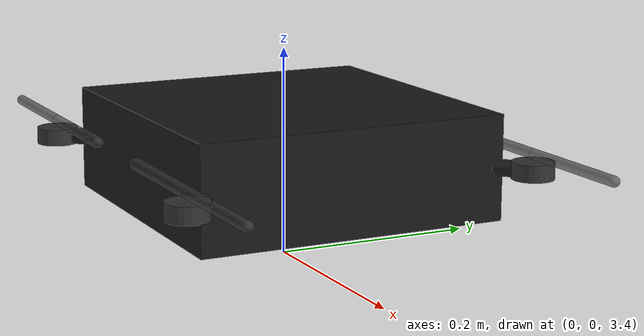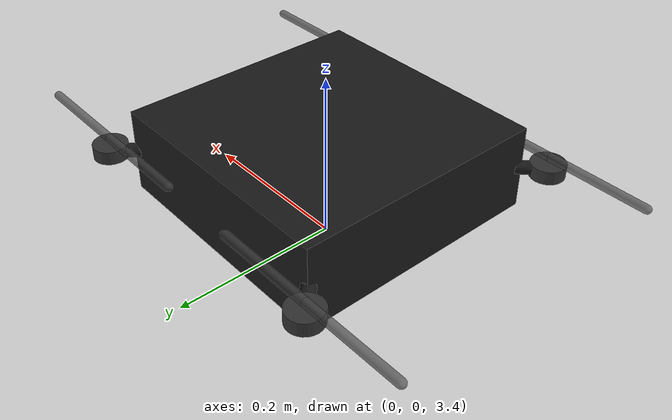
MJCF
<mujoco model="Skydio X2 Drone">
  <compiler angle="degree" coordinate="local" inertiafromgeom="true"/>

  <option timestep="0.002" density="1.204" viscosity="1.8e-5" integrator="RK4" gravity="0 0 -9.81"/>

  <visual>
    <global elevation="-20" azimuth="135"/>
    <map stiffness="100" stiffnessrot="50"/>
  </visual>

  <asset>
    <texture name="grid" type="2d" builtin="checker" width="512" height="512" rgb1="0.1 0.1 0.1" rgb2="0.15 0.15 0.15"/>
    <material name="grid" texture="grid" texrepeat="10 10" texuniform="true" reflectance="0.3"/>

    <!-- Skydio X2 Colors -->
    <material name="body_black" rgba="0.1 0.1 0.1 1"/>
    <material name="accent_orange" rgba="1 0.4 0 1"/>
    <material name="rotor_gray" rgba="0.3 0.3 0.3 0.8"/>
  </asset>

  <default>
    <geom friction="0.9"/>
    <joint damping="0.5" armature="0.01"/>
    <motor ctrllimited="true" ctrlrange="-1 1"/>
  </default>

  <worldbody>
    <!-- Ground plane -->
    <geom name="ground" type="plane" size="50 50 0.1" pos="0 0 0" material="grid"/>

    <!-- Lighting -->
    <light name="sun" directional="true" pos="0 0 10" dir="0 0 -1" diffuse="0.8 0.8 0.8"/>
    <light name="ambient" directional="false" pos="0 0 5" diffuse="0.4 0.4 0.4"/>

    <!-- Skydio X2 Drone -->
    <body name="drone_base" pos="0 0 3.5">
      <freejoint name="drone_root"/>

      <!-- Drone center body (simplified) -->
      <geom name="drone_body" type="box" size="0.15 0.15 0.05" rgba="0.1 0.1 0.1 1" mass="0.8"/>

      <!-- Front left arm -->
      <body name="arm_fl" pos="0.12 0.12 0">
        <geom name="arm_fl_geom" type="capsule" size="0.008" fromto="0 0 0 0.05 0.05 0" rgba="0.1 0.1 0.1 1" mass="0.02"/>
        <body name="motor_fl" pos="0.05 0.05 0">
          <geom name="motor_fl_geom" type="cylinder" size="0.02 0.008" rgba="0.2 0.2 0.2 1" mass="0.03"/>
          <!-- Rotor -->
          <body name="rotor_fl" pos="0 0 0.015">
            <joint name="rotor_fl_joint" type="hinge" axis="0 0 1" limited="false" damping="0.001"/>
            <geom name="prop_fl_1" type="capsule" size="0.005" fromto="0 0 0 0.12 0 0" rgba="0.3 0.3 0.3 0.7" mass="0.005"/>
            <geom name="prop_fl_2" type="capsule" size="0.005" fromto="0 0 0 -0.12 0 0" rgba="0.3 0.3 0.3 0.7" mass="0.005"/>
          </body>
        </body>
      </body>

      <!-- Front right arm -->
      <body name="arm_fr" pos="0.12 -0.12 0">
        <geom name="arm_fr_geom" type="capsule" size="0.008" fromto="0 0 0 0.05 -0.05 0" rgba="0.1 0.1 0.1 1" mass="0.02"/>
        <body name="motor_fr" pos="0.05 -0.05 0">
          <geom name="motor_fr_geom" type="cylinder" size="0.02 0.008" rgba="0.2 0.2 0.2 1" mass="0.03"/>
          <body name="rotor_fr" pos="0 0 0.015">
            <joint name="rotor_fr_joint" type="hinge" axis="0 0 1" limited="false" damping="0.001"/>
            <geom name="prop_fr_1" type="capsule" size="0.005" fromto="0 0 0 0.12 0 0" rgba="0.3 0.3 0.3 0.7" mass="0.005"/>
            <geom name="prop_fr_2" type="capsule" size="0.005" fromto="0 0 0 -0.12 0 0" rgba="0.3 0.3 0.3 0.7" mass="0.005"/>
          </body>
        </body>
      </body>

      <!-- Rear left arm -->
      <body name="arm_rl" pos="-0.12 0.12 0">
        <geom name="arm_rl_geom" type="capsule" size="0.008" fromto="0 0 0 -0.05 0.05 0" rgba="0.1 0.1 0.1 1" mass="0.02"/>
        <body name="motor_rl" pos="-0.05 0.05 0">
          <geom name="motor_rl_geom" type="cylinder" size="0.02 0.008" rgba="0.2 0.2 0.2 1" mass="0.03"/>
          <body name="rotor_rl" pos="0 0 0.015">
            <joint name="rotor_rl_joint" type="hinge" axis="0 0 1" limited="false" damping="0.001"/>
            <geom name="prop_rl_1" type="capsule" size="0.005" fromto="0 0 0 0.12 0 0" rgba="0.3 0.3 0.3 0.7" mass="0.005"/>
            <geom name="prop_rl_2" type="capsule" size="0.005" fromto="0 0 0 -0.12 0 0" rgba="0.3 0.3 0.3 0.7" mass="0.005"/>
          </body>
        </body>
      </body>

      <!-- Rear right arm -->
      <body name="arm_rr" pos="-0.12 -0.12 0">
        <geom name="arm_rr_geom" type="capsule" size="0.008" fromto="0 0 0 -0.05 -0.05 0" rgba="0.1 0.1 0.1 1" mass="0.02"/>
        <body name="motor_rr" pos="-0.05 -0.05 0">
          <geom name="motor_rr_geom" type="cylinder" size="0.02 0.008" rgba="0.2 0.2 0.2 1" mass="0.03"/>
          <body name="rotor_rr" pos="0 0 0.015">
            <joint name="rotor_rr_joint" type="hinge" axis="0 0 1" limited="false" damping="0.001"/>
            <geom name="prop_rr_1" type="capsule" size="0.005" fromto="0 0 0 0.12 0 0" rgba="0.3 0.3 0.3 0.7" mass="0.005"/>
            <geom name="prop_rr_2" type="capsule" size="0.005" fromto="0 0 0 -0.12 0 0" rgba="0.3 0.3 0.3 0.7" mass="0.005"/>
          </body>
        </body>
      </body>

      <!-- LED indicators -->
      <geom name="led_front" type="sphere" size="0.01" pos="0.08 0 0.03" rgba="0 1 0 0.8" mass="0.001"/>
      <geom name="led_rear" type="sphere" size="0.01" pos="-0.08 0 0.03" rgba="1 0 0 0.8" mass="0.001"/>
    </body>
  </worldbody>

  <actuator>
    <motor name="rotor_fl_motor" joint="rotor_fl_joint" gear="1" ctrlrange="-100 100"/>
    <motor name="rotor_fr_motor" joint="rotor_fr_joint" gear="1" ctrlrange="-100 100"/>
    <motor name="rotor_rl_motor" joint="rotor_rl_joint" gear="1" ctrlrange="-100 100"/>
    <motor name="rotor_rr_motor" joint="rotor_rr_joint" gear="1" ctrlrange="-100 100"/>
  </actuator>
</mujoco>
